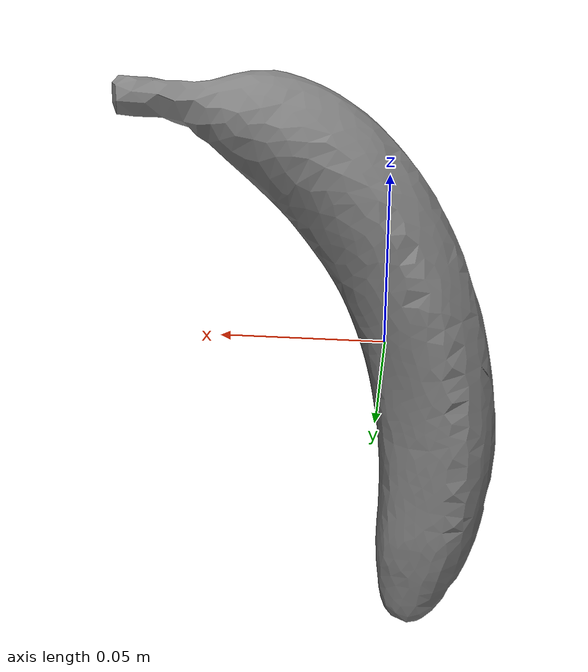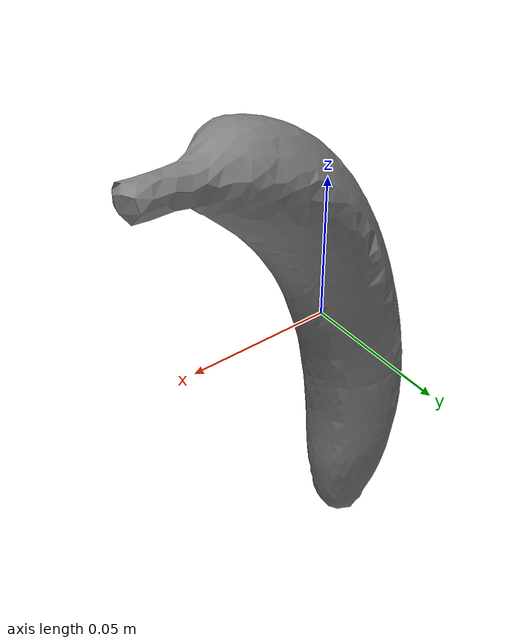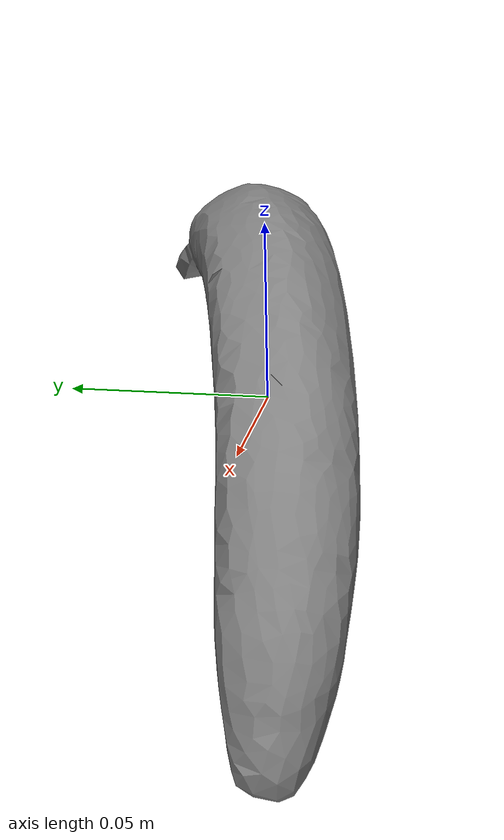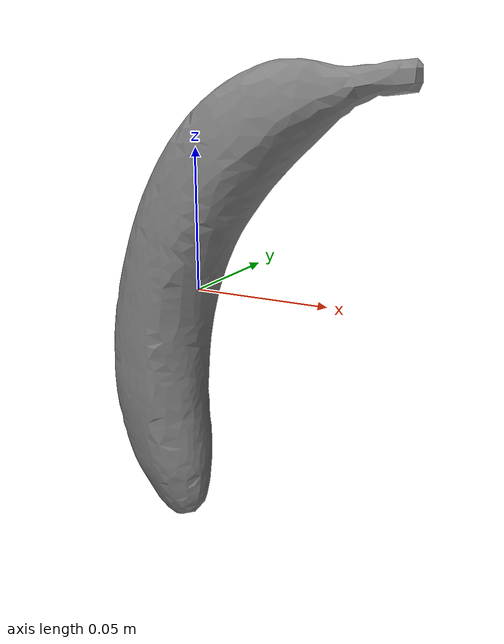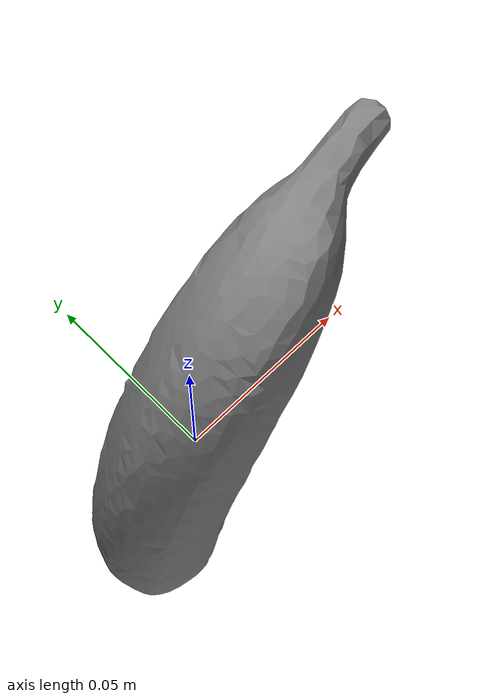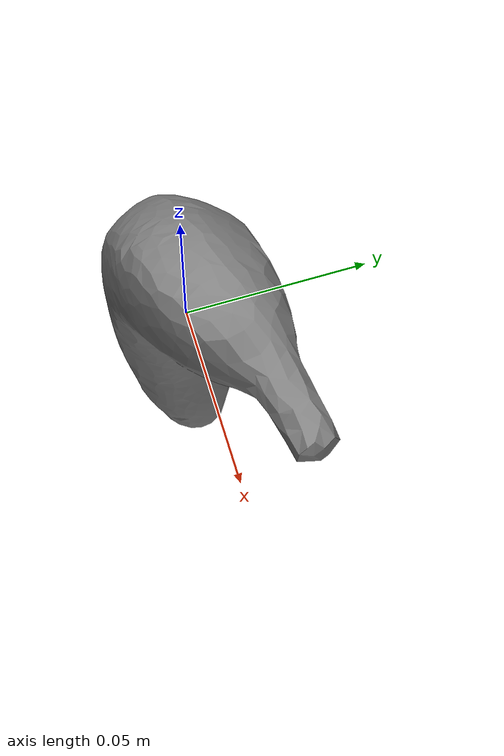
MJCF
<mujoco model="banana">
    <compiler angle="radian" meshdir="banana/stl" autolimits="true" />
    <default />
    <asset>
        <mesh name="banana" file="banana.stl" />
    </asset>
    <worldbody>
        <body name="banana">
            <geom type="mesh" mesh="banana" />
        </body>
    </worldbody>
    <equality />
    <contact />
</mujoco>
